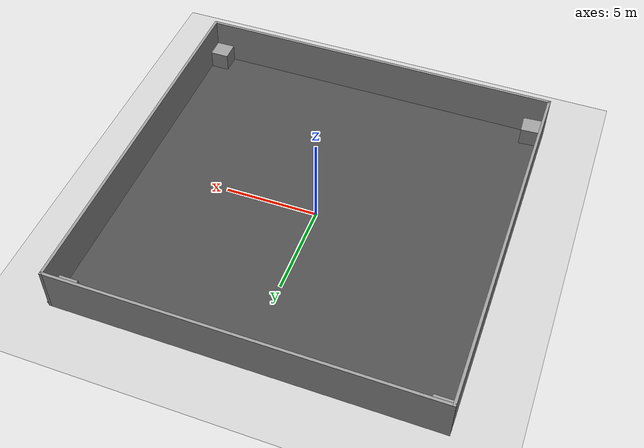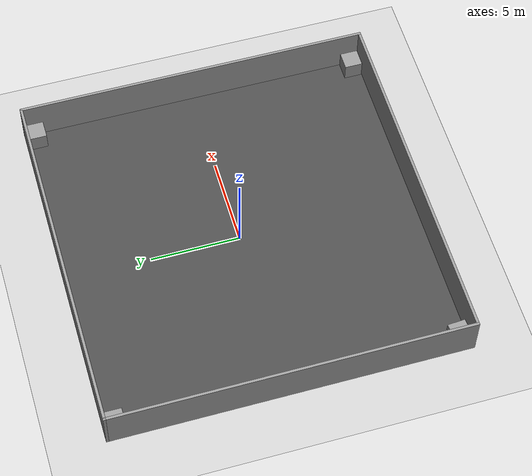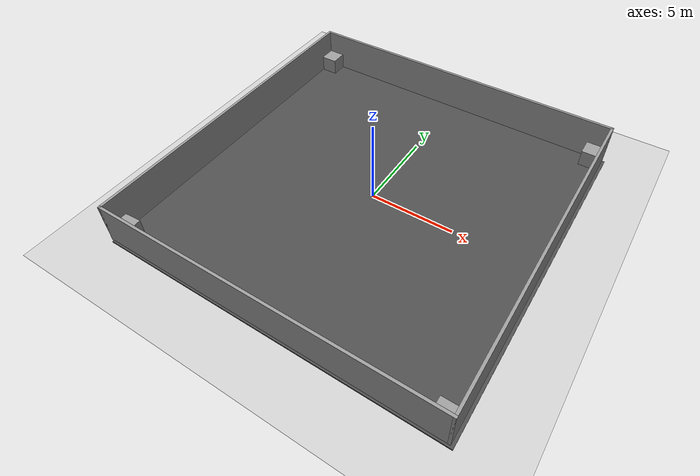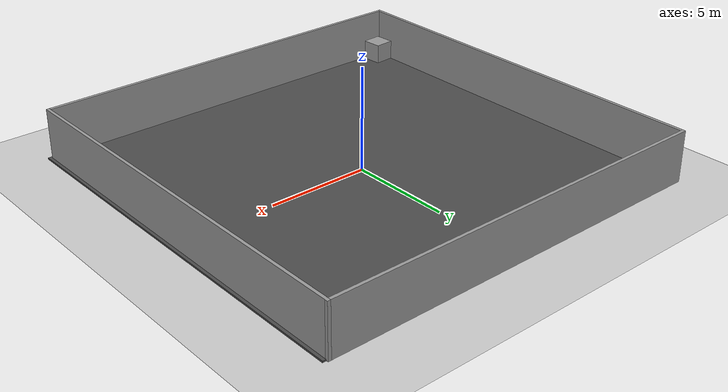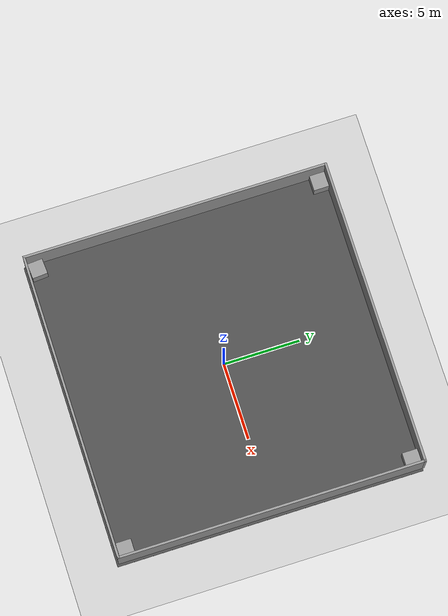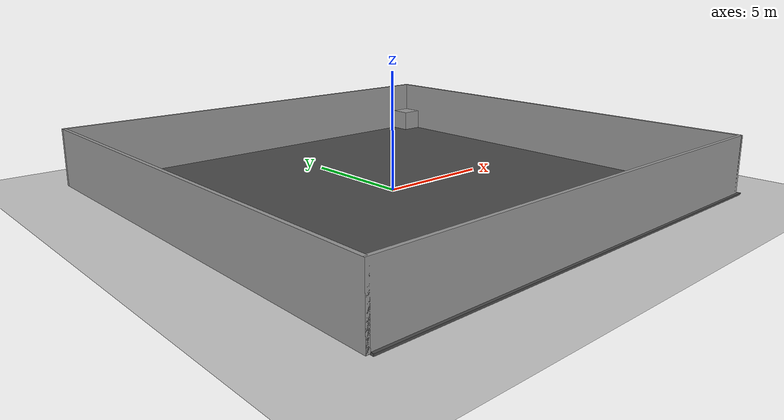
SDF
<sdf version="1.7">
 <world name="default">
  <light name="sun" type="directional">
   <pose>0 0 10 0 -0 0</pose>
   <diffuse>0.8 0.8 0.8 1</diffuse>
   <specular>0.2 0.2 0.2 1</specular>
   <attenuation>
    <range>1000</range>
    <constant>0.9</constant>
    <linear>0.01</linear>
    <quadratic>0.001</quadratic>
   </attenuation>
   <direction>-0.5 0.1 -0.9</direction>
   <spot><inner_angle>0</inner_angle><outer_angle>0</outer_angle><falloff>0</falloff></spot>
  </light>
  <model name="ground_plane">
   <static>1</static>
   <link name="link">
    <collision name="collision">
     <geometry><plane><normal>0 0 1</normal><size>100 100</size></plane></geometry>
     <surface><friction><ode><mu>100</mu><mu2>50</mu2></ode></friction></surface>
    </collision>
    <visual name="visual">
     <cast_shadows>0</cast_shadows>
     <geometry><plane><normal>0 0 1</normal><size>100 100</size></plane></geometry>
     <material>
      <script><uri>file://media/materials/scripts/gazebo.material</uri><name>Gazebo/Grey</name></script>
     </material>
    </visual>
   </link>
  </model>
  <gravity>0 0 -9.8</gravity>
  <magnetic_field>6e-06 2.3e-05 -4.2e-05</magnetic_field>
  <atmosphere type="adiabatic"/>
  <physics type="ode">
   <max_step_size>0.001</max_step_size>
   <real_time_factor>1</real_time_factor>
   <real_time_update_rate>1000</real_time_update_rate>
  </physics>
  <scene><ambient>0.4 0.4 0.4 1</ambient><background>0.7 0.7 0.7 1</background><shadows>1</shadows></scene>
  <audio><device>default</device></audio>
  <spherical_coordinates>
   <surface_model>EARTH_WGS84</surface_model>
   <latitude_deg>0</latitude_deg>
   <longitude_deg>0</longitude_deg>
   <elevation>0</elevation>
   <heading_deg>0</heading_deg>
  </spherical_coordinates>
  <model name="asphalt_plane">
   <static>1</static>
   <link name="link">
    <collision name="collision"><geometry><box><size>20 20 0.1</size></box></geometry></collision>
    <visual name="visual">
     <cast_shadows>0</cast_shadows>
     <geometry><box><size>20 20 0.1</size></box></geometry>
     <material>
      <script>
       <uri>model://asphalt_plane/materials/scripts</uri>
       <uri>model://asphalt_plane/materials/textures</uri>
       <name>vrc/asphalt</name>
      </script>
     </material>
    </visual>
   </link>
   <pose>0.231063 -0.187969 0 0 -0 0</pose>
  </model>
  <model name="4Walls">
   <pose>0.075 -0.075 0 0 -0 0</pose>
   <link name="Wall_17">
    <collision name="Wall_17_Collision">
     <geometry><box><size>20 0.15 2.5</size></box></geometry>
     <pose>0 0 1.25 0 -0 0</pose>
    </collision>
    <visual name="Wall_17_Visual">
     <pose>0 0 1.25 0 -0 0</pose>
     <geometry><box><size>20 0.15 2.5</size></box></geometry>
     <material>
      <script><uri>file://media/materials/scripts/gazebo.material</uri><name>Gazebo/Grey</name></script>
      <ambient>1 1 1 1</ambient>
     </material>
     <meta><layer>0</layer></meta>
    </visual>
    <pose>0 -9.925 0 0 -0 0</pose>
   </link>
   <link name="Wall_19">
    <collision name="Wall_19_Collision">
     <geometry><box><size>20 0.15 2.5</size></box></geometry>
     <pose>0 0 1.25 0 -0 0</pose>
    </collision>
    <visual name="Wall_19_Visual">
     <pose>0 0 1.25 0 -0 0</pose>
     <geometry><box><size>20 0.15 2.5</size></box></geometry>
     <material>
      <script><uri>file://media/materials/scripts/gazebo.material</uri><name>Gazebo/Grey</name></script>
      <ambient>1 1 1 1</ambient>
     </material>
     <meta><layer>0</layer></meta>
    </visual>
    <pose>9.925 -0 0 0 -0 1.5708</pose>
   </link>
   <link name="Wall_21">
    <collision name="Wall_21_Collision">
     <geometry><box><size>20 0.15 2.5</size></box></geometry>
     <pose>0 0 1.25 0 -0 0</pose>
    </collision>
    <visual name="Wall_21_Visual">
     <pose>0 0 1.25 0 -0 0</pose>
     <geometry><box><size>20 0.15 2.5</size></box></geometry>
     <material>
      <script><uri>file://media/materials/scripts/gazebo.material</uri><name>Gazebo/Grey</name></script>
      <ambient>1 1 1 1</ambient>
     </material>
     <meta><layer>0</layer></meta>
    </visual>
    <pose>0 9.925 0 0 -0 3.14159</pose>
   </link>
   <link name="Wall_22">
    <collision name="Wall_22_Collision">
     <geometry><box><size>20 0.15 2.5</size></box></geometry>
     <pose>0 0 1.25 0 -0 0</pose>
    </collision>
    <visual name="Wall_22_Visual">
     <pose>0 0 1.25 0 -0 0</pose>
     <geometry><box><size>20 0.15 2.5</size></box></geometry>
     <material>
      <script><uri>file://media/materials/scripts/gazebo.material</uri><name>Gazebo/Grey</name></script>
      <ambient>1 1 1 1</ambient>
     </material>
     <meta><layer>0</layer></meta>
    </visual>
    <pose>-9.925 -0 0 0 -0 -1.5708</pose>
   </link>
   <static>1</static>
  </model>
  <model name="marker_bottom_left">
   <link name="link">
    <inertial>
     <mass>1</mass>
     <inertia>
      <ixx>0.166667</ixx>
      <ixy>0</ixy>
      <ixz>0</ixz>
      <iyy>0.166667</iyy>
      <iyz>0</iyz>
      <izz>0.166667</izz>
     </inertia>
    </inertial>
    <visual name="visual">
     <geometry><box><size>1 1 1</size></box></geometry>
     <material>
      <script><name>Gazebo/Grey</name><uri>file://media/materials/scripts/gazebo.material</uri></script>
      <shader type="pixel"/>
     </material>
    </visual>
    <collision name="collision">
     <geometry><box><size>1 1 1</size></box></geometry>
     <surface>
      <friction>
       <ode><mu>1</mu><mu2>1</mu2><fdir1>0 0 0</fdir1><slip1>0</slip1><slip2>0</slip2></ode>
       <torsional>
        <coefficient>1</coefficient>
        <patch_radius>0</patch_radius>
        <surface_radius>0</surface_radius>
        <use_patch_radius>1</use_patch_radius>
        <ode><slip>0</slip></ode>
       </torsional>
      </friction>
      <bounce><restitution_coefficient>0</restitution_coefficient><threshold>1e+06</threshold></bounce>
      <contact>
       <collide_without_contact>0</collide_without_contact>
       <collide_without_contact_bitmask>1</collide_without_contact_bitmask>
       <collide_bitmask>1</collide_bitmask>
       <ode>
        <soft_cfm>0</soft_cfm>
        <soft_erp>0.2</soft_erp>
        <kp>1e+13</kp>
        <kd>1</kd>
        <max_vel>0.01</max_vel>
        <min_depth>0</min_depth>
       </ode>
       <bullet>
        <split_impulse>1</split_impulse>
        <split_impulse_penetration_threshold>-0.01</split_impulse_penetration_threshold>
        <soft_cfm>0</soft_cfm>
        <soft_erp>0.2</soft_erp>
        <kp>1e+13</kp>
        <kd>1</kd>
       </bullet>
      </contact>
     </surface>
    </collision>
   </link>
   <static>1</static>
   <pose>-9.26194 9.27499 0.549996 9e-06 -0 2.2e-05</pose>
  </model>
  <model name="marker_bottom_right">
   <link name="link">
    <inertial>
     <mass>1</mass>
     <inertia>
      <ixx>0.166667</ixx>
      <ixy>0</ixy>
      <ixz>0</ixz>
      <iyy>0.166667</iyy>
      <iyz>0</iyz>
      <izz>0.166667</izz>
     </inertia>
    </inertial>
    <visual name="visual">
     <geometry><box><size>1 1 1</size></box></geometry>
     <material>
      <script><name>Gazebo/Grey</name><uri>file://media/materials/scripts/gazebo.material</uri></script>
      <shader type="pixel"/>
     </material>
    </visual>
    <collision name="collision">
     <geometry><box><size>1 1 1</size></box></geometry>
     <surface>
      <friction>
       <ode><mu>1</mu><mu2>1</mu2><fdir1>0 0 0</fdir1><slip1>0</slip1><slip2>0</slip2></ode>
       <torsional>
        <coefficient>1</coefficient>
        <patch_radius>0</patch_radius>
        <surface_radius>0</surface_radius>
        <use_patch_radius>1</use_patch_radius>
        <ode><slip>0</slip></ode>
       </torsional>
      </friction>
      <bounce><restitution_coefficient>0</restitution_coefficient><threshold>1e+06</threshold></bounce>
      <contact>
       <collide_without_contact>0</collide_without_contact>
       <collide_without_contact_bitmask>1</collide_without_contact_bitmask>
       <collide_bitmask>1</collide_bitmask>
       <ode>
        <soft_cfm>0</soft_cfm>
        <soft_erp>0.2</soft_erp>
        <kp>1e+13</kp>
        <kd>1</kd>
        <max_vel>0.01</max_vel>
        <min_depth>0</min_depth>
       </ode>
       <bullet>
        <split_impulse>1</split_impulse>
        <split_impulse_penetration_threshold>-0.01</split_impulse_penetration_threshold>
        <soft_cfm>0</soft_cfm>
        <soft_erp>0.2</soft_erp>
        <kp>1e+13</kp>
        <kd>1</kd>
       </bullet>
      </contact>
     </surface>
    </collision>
   </link>
   <static>1</static>
   <pose>-9.23389 -9.39313 0.549997 0 -6e-06 0.065953</pose>
  </model>
  <model name="marker_top_right">
   <link name="link">
    <inertial>
     <mass>1</mass>
     <inertia>
      <ixx>0.166667</ixx>
      <ixy>0</ixy>
      <ixz>0</ixz>
      <iyy>0.166667</iyy>
      <iyz>0</iyz>
      <izz>0.166667</izz>
     </inertia>
    </inertial>
    <visual name="visual">
     <geometry><box><size>1 1 1</size></box></geometry>
     <material>
      <script><name>Gazebo/Grey</name><uri>file://media/materials/scripts/gazebo.material</uri></script>
      <shader type="pixel"/>
     </material>
    </visual>
    <collision name="collision">
     <geometry><box><size>1 1 1</size></box></geometry>
     <surface>
      <friction>
       <ode><mu>1</mu><mu2>1</mu2><fdir1>0 0 0</fdir1><slip1>0</slip1><slip2>0</slip2></ode>
       <torsional>
        <coefficient>1</coefficient>
        <patch_radius>0</patch_radius>
        <surface_radius>0</surface_radius>
        <use_patch_radius>1</use_patch_radius>
        <ode><slip>0</slip></ode>
       </torsional>
      </friction>
      <bounce><restitution_coefficient>0</restitution_coefficient><threshold>1e+06</threshold></bounce>
      <contact>
       <collide_without_contact>0</collide_without_contact>
       <collide_without_contact_bitmask>1</collide_without_contact_bitmask>
       <collide_bitmask>1</collide_bitmask>
       <ode>
        <soft_cfm>0</soft_cfm>
        <soft_erp>0.2</soft_erp>
        <kp>1e+13</kp>
        <kd>1</kd>
        <max_vel>0.01</max_vel>
        <min_depth>0</min_depth>
       </ode>
       <bullet>
        <split_impulse>1</split_impulse>
        <split_impulse_penetration_threshold>-0.01</split_impulse_penetration_threshold>
        <soft_cfm>0</soft_cfm>
        <soft_erp>0.2</soft_erp>
        <kp>1e+13</kp>
        <kd>1</kd>
       </bullet>
      </contact>
     </surface>
    </collision>
   </link>
   <static>0</static>
   <pose>9.40696 -9.40046 0.55 0 -0 3e-06</pose>
  </model>
  <model name="marker_top_left">
   <link name="link">
    <inertial>
     <mass>1</mass>
     <inertia>
      <ixx>0.166667</ixx>
      <ixy>0</ixy>
      <ixz>0</ixz>
      <iyy>0.166667</iyy>
      <iyz>0</iyz>
      <izz>0.166667</izz>
     </inertia>
    </inertial>
    <visual name="visual">
     <geometry><box><size>1 1 1</size></box></geometry>
     <material>
      <script><name>Gazebo/Grey</name><uri>file://media/materials/scripts/gazebo.material</uri></script>
      <shader type="pixel"/>
     </material>
    </visual>
    <collision name="collision">
     <geometry><box><size>1 1 1</size></box></geometry>
     <surface>
      <friction>
       <ode><mu>1</mu><mu2>1</mu2><fdir1>0 0 0</fdir1><slip1>0</slip1><slip2>0</slip2></ode>
       <torsional>
        <coefficient>1</coefficient>
        <patch_radius>0</patch_radius>
        <surface_radius>0</surface_radius>
        <use_patch_radius>1</use_patch_radius>
        <ode><slip>0</slip></ode>
       </torsional>
      </friction>
      <bounce><restitution_coefficient>0</restitution_coefficient><threshold>1e+06</threshold></bounce>
      <contact>
       <collide_without_contact>0</collide_without_contact>
       <collide_without_contact_bitmask>1</collide_without_contact_bitmask>
       <collide_bitmask>1</collide_bitmask>
       <ode>
        <soft_cfm>0</soft_cfm>
        <soft_erp>0.2</soft_erp>
        <kp>1e+13</kp>
        <kd>1</kd>
        <max_vel>0.01</max_vel>
        <min_depth>0</min_depth>
       </ode>
       <bullet>
        <split_impulse>1</split_impulse>
        <split_impulse_penetration_threshold>-0.01</split_impulse_penetration_threshold>
        <soft_cfm>0</soft_cfm>
        <soft_erp>0.2</soft_erp>
        <kp>1e+13</kp>
        <kd>1</kd>
       </bullet>
      </contact>
     </surface>
    </collision>
   </link>
   <static>0</static>
   <pose>9.42471 9.27475 0.55 0 -0 4.8e-05</pose>
  </model>
 </world>
</sdf>
